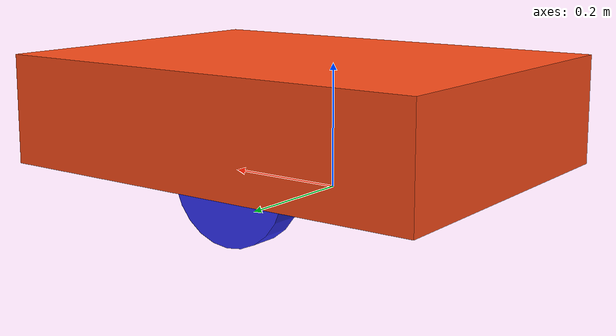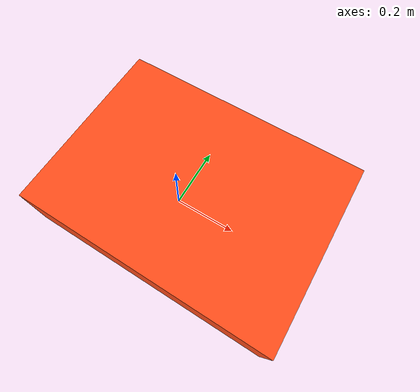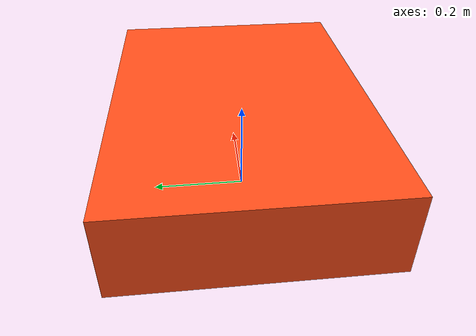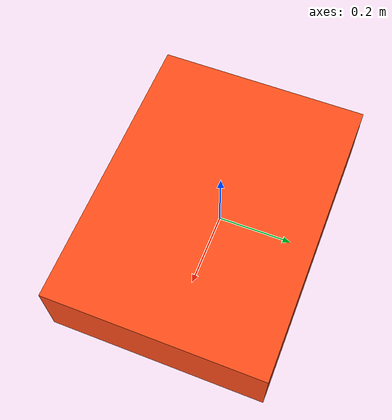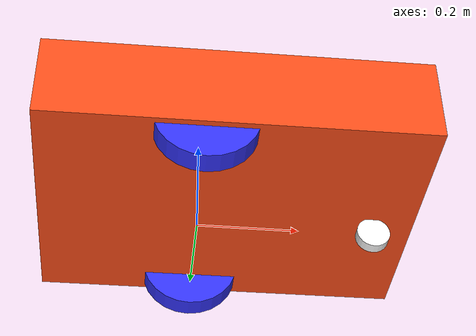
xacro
<?xml version="1.0"?>
<robot xmlns:xacro="http://www.ros.org/wiki/xacro" >

    <xacro:include filename="inertial_macros.xacro"/>

    <xacro:property name="chassis_length" value="0.750"/>
    <xacro:property name="chassis_width" value="0.550"/>
    <xacro:property name="chassis_height" value="0.180"/>
    <xacro:property name="chassis_mass" value="30.0"/>
    <xacro:property name="wheel_radius" value="0.100"/>
    <xacro:property name="wheel_thickness" value="0.045"/>
    <xacro:property name="wheel_mass" value="0.250"/>
    <xacro:property name="wheel_offset_x" value="0.315"/>
    <xacro:property name="wheel_offset_y" value="0.24"/>
    <xacro:property name="wheel_offset_z" value="-0.03"/>
    <xacro:property name="caster_wheel_radius" value="0.033"/>
    <xacro:property name="caster_wheel_thickness" value="0.0225"/>
    <xacro:property name="caster_wheel_mass" value="0.200"/>
    <xacro:property name="caster_wheel_offset_x" value="0.35"/>
    <xacro:property name="caster_wheel_offset_z" value="0"/>

    <material name="white">
        <color rgba="1 1 1 1" />
    </material>

    <material name="orange">
        <color rgba="1 0.3 0.1 1"/>
    </material>

    <material name="blue">
        <color rgba="0.2 0.2 1 1"/>
    </material>

    <material name="black">
        <color rgba="0 0 0 1"/>
    </material>

    <material name="red">
        <color rgba="1 0 0 1"/>
    </material>

    <!-- BASE LINK -->

    <link name="base_link">

    </link>

    <!-- BASE_FOOTPRINT LINK -->

    <joint name="base_footprint_joint" type="fixed">
        <parent link="base_link"/>
        <child link="base_footprint"/>
        <origin xyz="0 0 0" rpy="0 0 0"/>
    </joint>

    <link name="base_footprint">
    </link>

    <!-- CHASSIS LINK -->

    <joint name="chassis_joint" type="fixed">
        <parent link="base_link"/>
        <child link="chassis"/>
        <origin xyz="${-wheel_offset_x} 0 ${-wheel_offset_z}"/>
    </joint>

    <link name="chassis">
        <visual>
            <origin xyz="${chassis_length/2} 0 ${chassis_height/2}"/>
            <geometry>
                <box size="${chassis_length} ${chassis_width} ${chassis_height}"/>
            </geometry>
            <material name="orange"/>
        </visual>
        <collision>
            <origin xyz="${chassis_length/2} 0 ${chassis_height/2}"/>
            <geometry>
                <box size="${chassis_length} ${chassis_width} ${chassis_height}"/>
            </geometry>
        </collision>
        <xacro:inertial_box mass="${chassis_mass}" x="${chassis_length}" y="${chassis_width}" z="${chassis_height}">
            <origin xyz="${chassis_length/2} 0 ${chassis_height/2}" rpy="0 0 0"/>
        </xacro:inertial_box>
    </link>

    <gazebo reference="chassis">
        <material>Gazebo/Orange</material>
    </gazebo>

    <!-- LEFT WHEEL LINK -->

    <joint name="left_wheel_joint" type="continuous">
        <parent link="base_link"/>
        <child link="left_wheel"/>
        <origin xyz="0 ${wheel_offset_y} ${-wheel_offset_z*2}" rpy="-${pi/2} 0 0" />
        <axis xyz="0 0 1"/>
    </joint>

    <link name="left_wheel">
        <visual>
            <geometry>
                <cylinder radius="${wheel_radius}" length="${wheel_thickness}"/>
            </geometry>
            <material name="blue"/>
        </visual>
        <collision>
            <geometry>
                <sphere radius="${wheel_radius}"/>
            </geometry>
        </collision>
        <xacro:inertial_cylinder mass="${wheel_mass}" length="${wheel_thickness}" radius="${wheel_radius}">
            <origin xyz="0 0 0" rpy="0 0 0"/>
        </xacro:inertial_cylinder>
    </link>

    <gazebo reference="left_wheel">
        <material>Gazebo/Blue</material>
    </gazebo>

    <!-- RIGHT WHEEL LINK -->

    <joint name="right_wheel_joint" type="continuous">
        <parent link="base_link"/>
        <child link="right_wheel"/>
        <origin xyz="0 ${-wheel_offset_y} ${-wheel_offset_z*2}" rpy="${pi/2} 0 0" />
        <axis xyz="0 0 -1"/>
    </joint>

    <link name="right_wheel">
        <visual>
            <geometry>
                <cylinder radius="${wheel_radius}" length="${wheel_thickness}"/>
            </geometry>
            <material name="blue"/>
        </visual>
        <collision>
            <geometry>
                <sphere radius="${wheel_radius}"/>
            </geometry>
        </collision>
        <xacro:inertial_cylinder mass="${wheel_mass}" length="${wheel_thickness}" radius="${wheel_radius}">
            <origin xyz="0 0 0" rpy="0 0 0"/>
        </xacro:inertial_cylinder>
    </link>

    <gazebo reference="right_wheel">
        <material>Gazebo/Blue</material>
    </gazebo>

    <!-- CASTER WHEEL LINK -->

    <joint name="caster_wheel_joint" type="fixed">
        <parent link="base_link"/>
        <child link="caster_wheel"/>
        <origin xyz="${caster_wheel_offset_x} 0 ${caster_wheel_offset_z}" rpy="${pi/2} 0 0"/>
    </joint>

    <link name="caster_wheel">
        <visual>
            <geometry>
                <cylinder radius="${caster_wheel_radius}" length="${caster_wheel_thickness}"/>
            </geometry>
            <material name="white"/>
        </visual>
        <collision>
            <geometry>
                <sphere radius="${caster_wheel_radius}"/>
            </geometry>
        </collision>
        <xacro:inertial_cylinder mass="${caster_wheel_mass}" length="${caster_wheel_thickness}" radius="${caster_wheel_radius}">
            <origin xyz="0 0 0" rpy="0 0 0"/>
        </xacro:inertial_cylinder>
    </link>

    <gazebo reference="caster_wheel">
        <material>Gazebo/White</material>
    </gazebo>

</robot>
